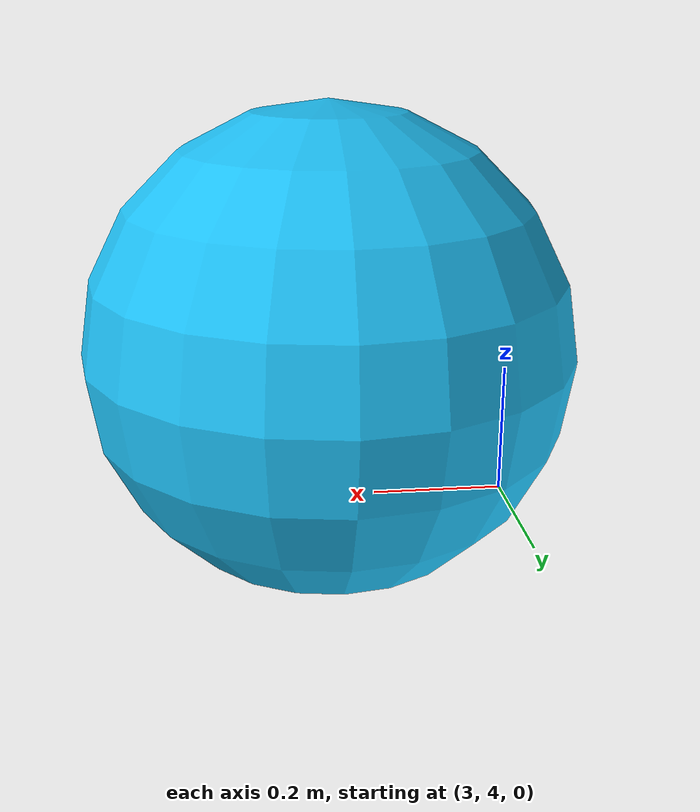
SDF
<sdf version="1.6">
 <world name="default">
  <model name="ground_plane">
   <static>true</static>
   <link name="link">
    <collision name="collision">
     <geometry><plane><normal>0 0 1</normal><size>100 100</size></plane></geometry>
    </collision>
   </link>
  </model>
  <model name="Ball_01_001">
   <static>true</static>
   <include><uri>model://aws_robomaker_residential_Ball_01</uri></include>
   <pose>3.295503 4.225674 0.318684 0 -0 0</pose>
  </model>
 </world>
</sdf>
